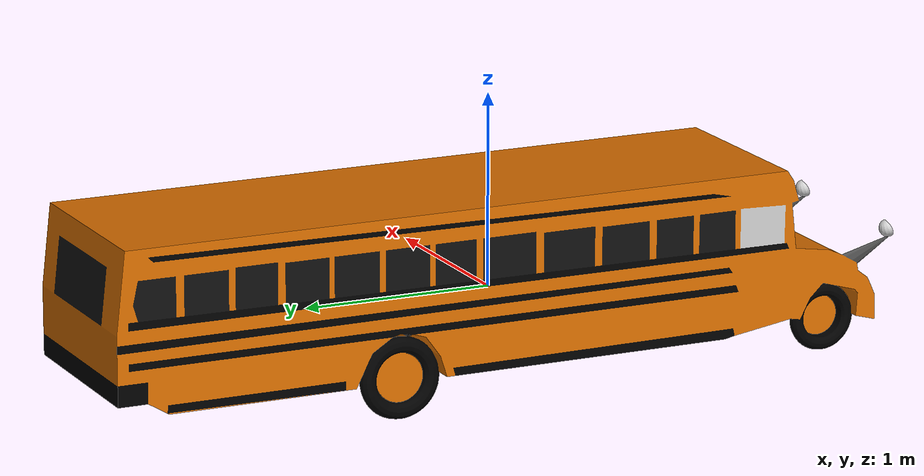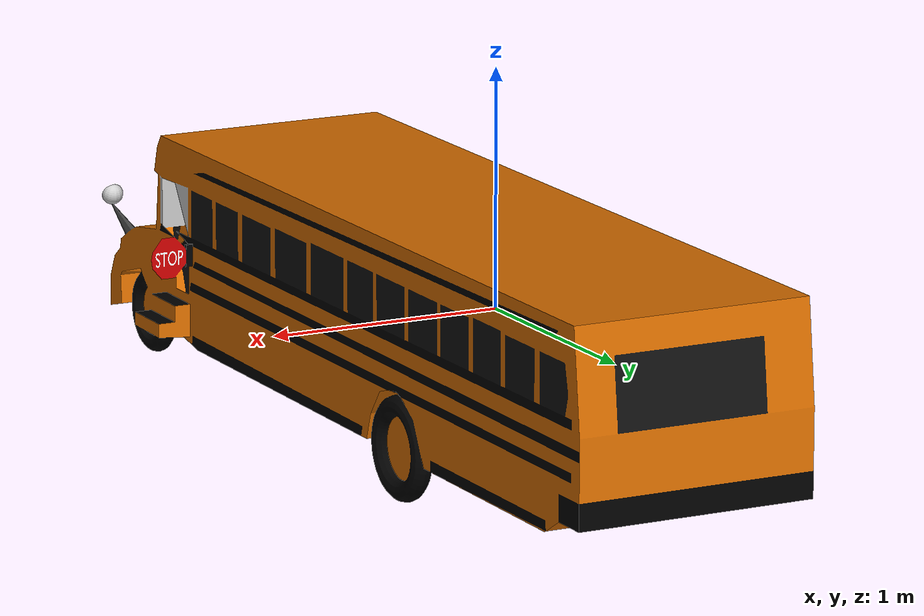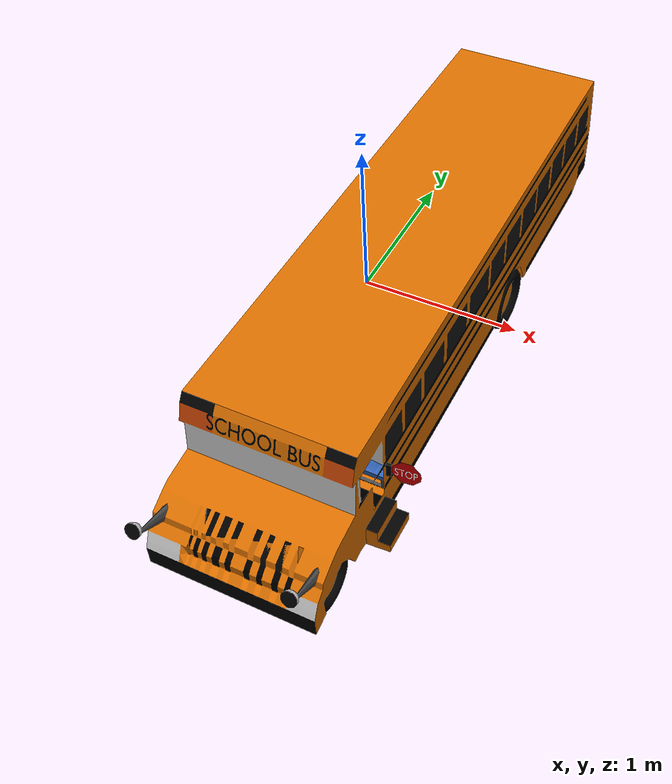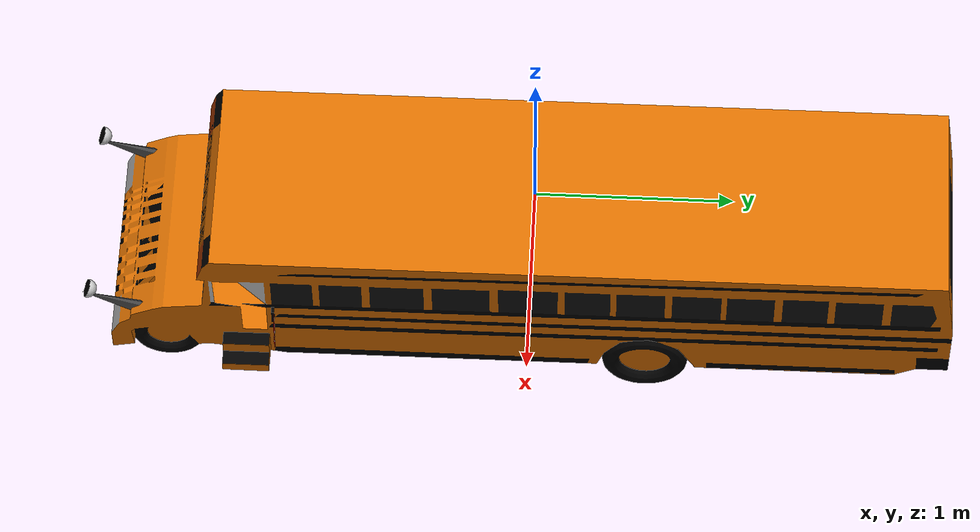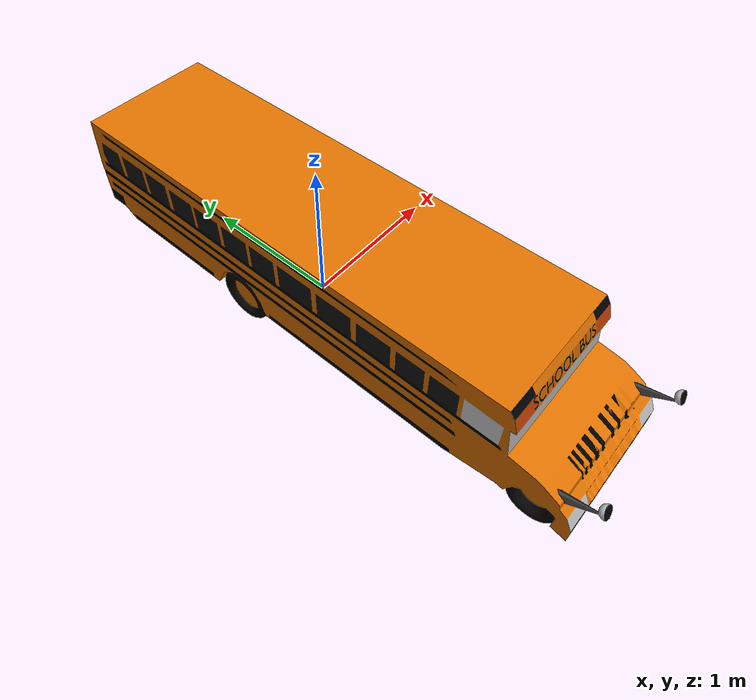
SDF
<?xml version="1.0" ?>
<sdf version="1.6">
  <model name="schoolBus">
    <static>true</static>
    <link name="link">
      <visual name="visual">
        <geometry>
          <mesh>
           <scale>0.45 0.45 0.45</scale>
            <uri>model://schoolBus/meshes/schoolBus.dae</uri>
          </mesh>
        </geometry>
      </visual>
    </link>
  </model>
</sdf>
